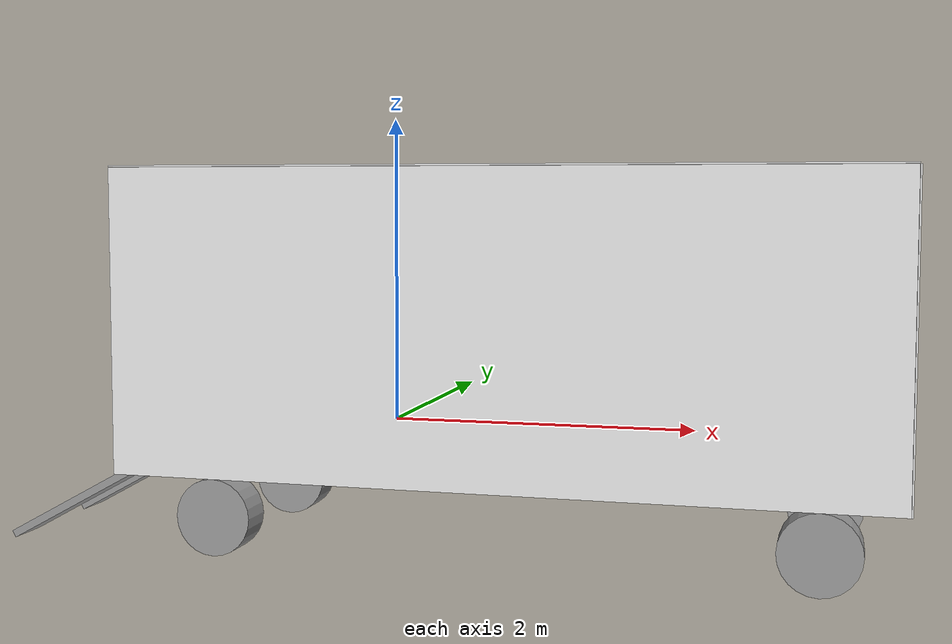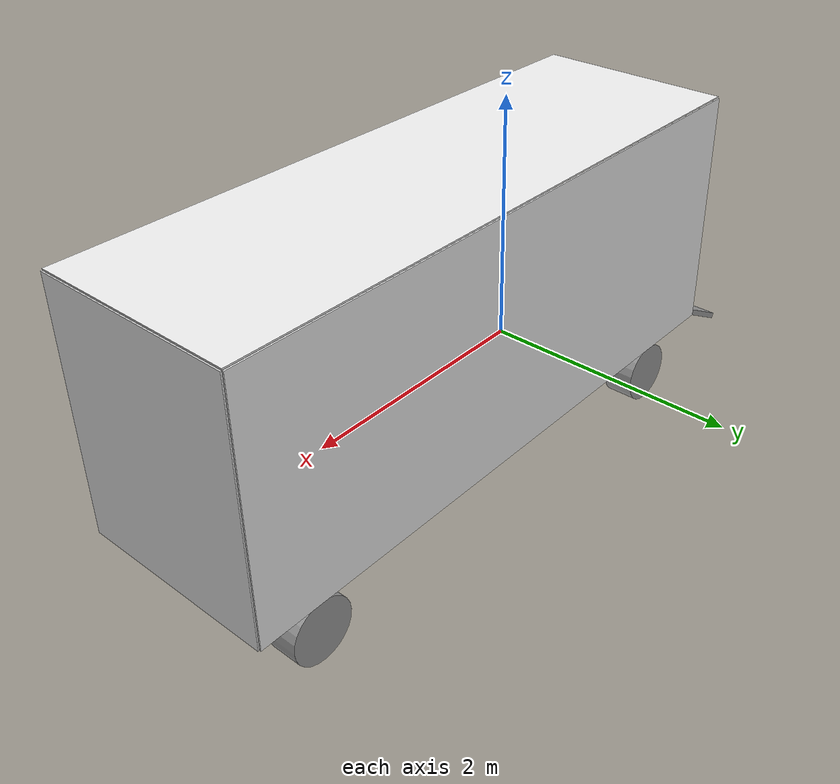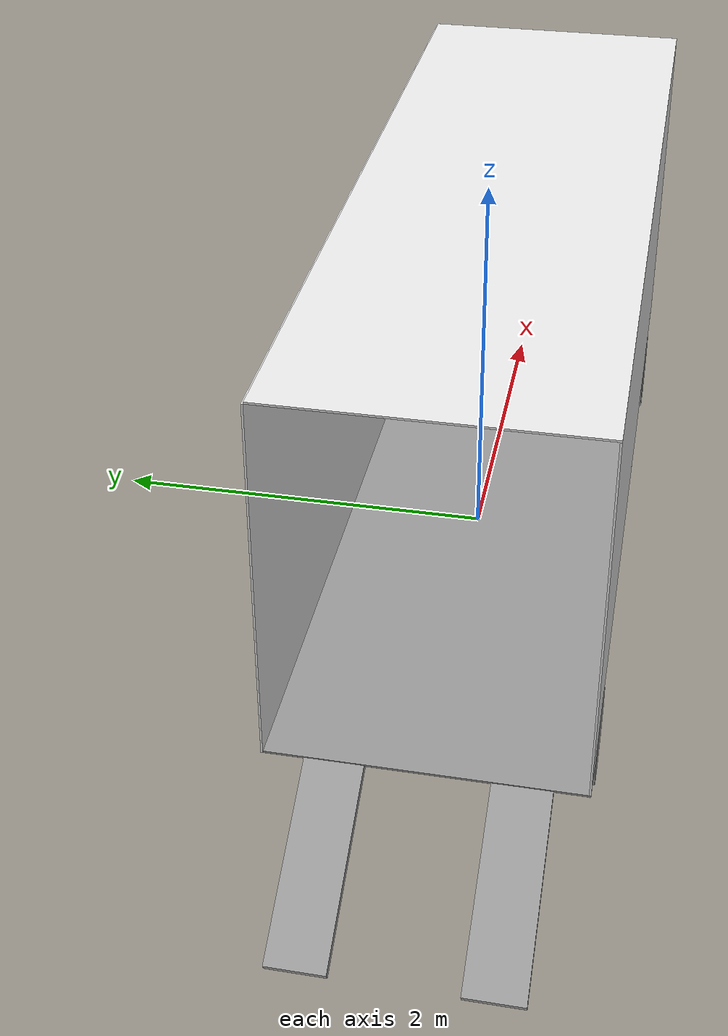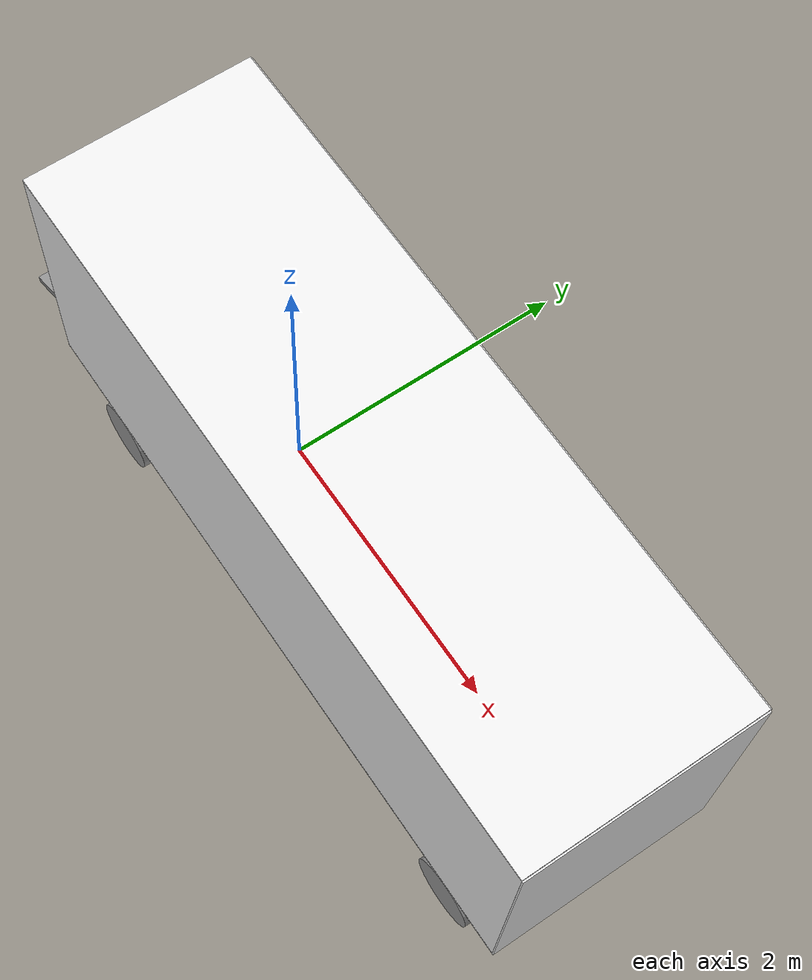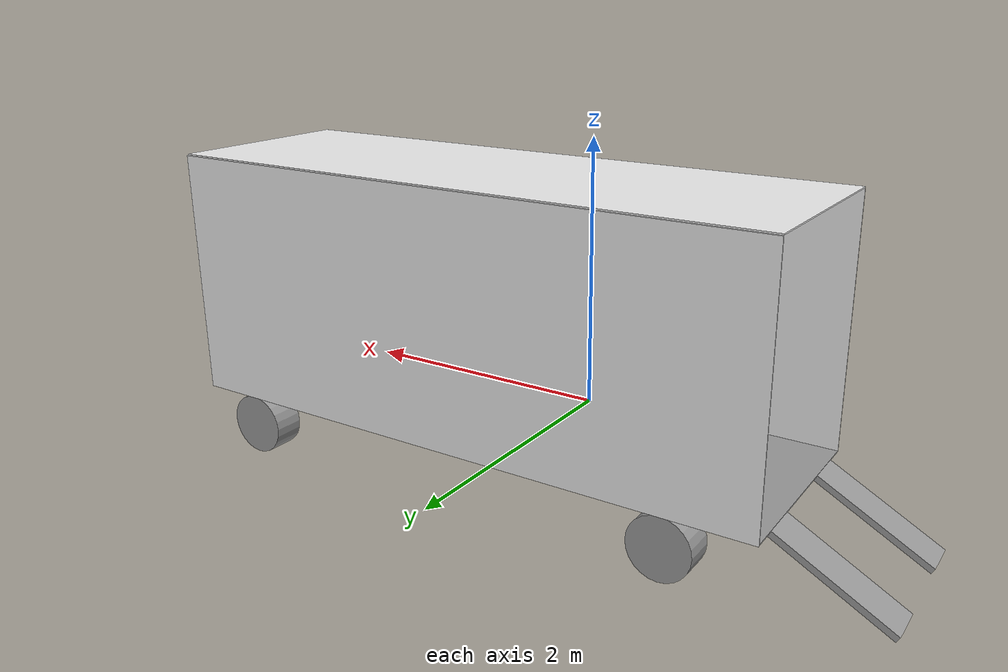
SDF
<?xml version='1.0'?>
<sdf version='1.6'>
  <model name='van'>
    <link name='link_0'>
      <inertial>
        <mass>1</mass>
        <inertia>
          <ixx>0.166667</ixx>
          <ixy>0</ixy>
          <ixz>0</ixz>
          <iyy>0.166667</iyy>
          <iyz>0</iyz>
          <izz>0.166667</izz>
        </inertia>
        <pose frame=''>0 0 0 0 -0 0</pose>
      </inertial>
      <pose frame=''>0.803701 0.00132 -0.310336 0 -0 0</pose>
      <gravity>1</gravity>
      <self_collide>0</self_collide>
      <kinematic>0</kinematic>
      <enable_wind>0</enable_wind>
      <visual name='visual'>
        <pose frame=''>0 0 0 0 -0 0</pose>
        <geometry>
          <box>
            <size>5 1.6 0.01</size>
          </box>
        </geometry>
        <material>
          <lighting>1</lighting>
          <script>
            <uri>file://media/materials/scripts/gazebo.material</uri>
            <name>Gazebo/Grey</name>
          </script>
          <shader type='vertex'>
            <normal_map>__default__</normal_map>
          </shader>
          <ambient>0.3 0.3 0.3 1</ambient>
          <diffuse>0.7 0.7 0.7 1</diffuse>
          <specular>0.01 0.01 0.01 1</specular>
          <emissive>0 0 0 1</emissive>
        </material>
        <transparency>0</transparency>
        <cast_shadows>1</cast_shadows>
      </visual>
      <collision name='collision'>
        <laser_retro>0</laser_retro>
        <max_contacts>10</max_contacts>
        <pose frame=''>0 0 0 0 -0 0</pose>
        <geometry>
          <box>
            <size>5 1.6 0.01</size>
          </box>
        </geometry>
        <surface>
          <friction>
            <ode>
              <mu>1</mu>
              <mu2>1</mu2>
              <fdir1>0 0 0</fdir1>
              <slip1>0</slip1>
              <slip2>0</slip2>
            </ode>
            <torsional>
              <coefficient>1</coefficient>
              <patch_radius>0</patch_radius>
              <surface_radius>0</surface_radius>
              <use_patch_radius>1</use_patch_radius>
              <ode>
                <slip>0</slip>
              </ode>
            </torsional>
          </friction>
          <bounce>
            <restitution_coefficient>0</restitution_coefficient>
            <threshold>1e+06</threshold>
          </bounce>
          <contact>
            <collide_without_contact>0</collide_without_contact>
            <collide_without_contact_bitmask>1</collide_without_contact_bitmask>
            <collide_bitmask>1</collide_bitmask>
            <ode>
              <soft_cfm>0</soft_cfm>
              <soft_erp>0.2</soft_erp>
              <kp>1e+13</kp>
              <kd>1</kd>
              <max_vel>0.01</max_vel>
              <min_depth>0</min_depth>
            </ode>
            <bullet>
              <split_impulse>1</split_impulse>
              <split_impulse_penetration_threshold>-0.01</split_impulse_penetration_threshold>
              <soft_cfm>0</soft_cfm>
              <soft_erp>0.2</soft_erp>
              <kp>1e+13</kp>
              <kd>1</kd>
            </bullet>
          </contact>
        </surface>
      </collision>
    </link>
    <link name='link_0_clone'>
      <inertial>
        <mass>1</mass>
        <inertia>
          <ixx>0.166667</ixx>
          <ixy>0</ixy>
          <ixz>0</ixz>
          <iyy>0.166667</iyy>
          <iyz>0</iyz>
          <izz>0.166667</izz>
        </inertia>
        <pose frame=''>0 0 0 0 -0 0</pose>
      </inertial>
      <pose frame=''>0.803701 0.00132 1.68966 0 -0 0</pose>
      <gravity>1</gravity>
      <self_collide>0</self_collide>
      <kinematic>0</kinematic>
      <enable_wind>0</enable_wind>
      <visual name='visual'>
        <pose frame=''>0 0 0 0 -0 0</pose>
        <geometry>
          <box>
            <size>5 1.6 0.01</size>
          </box>
        </geometry>
        <material>
          <lighting>1</lighting>
          <script>
            <uri>file://media/materials/scripts/gazebo.material</uri>
            <name>Gazebo/White</name>
          </script>
          <shader type='vertex'>
            <normal_map>__default__</normal_map>
          </shader>
          <ambient>0.3 0.3 0.3 1</ambient>
          <diffuse>0.7 0.7 0.7 1</diffuse>
          <specular>0.01 0.01 0.01 1</specular>
          <emissive>0 0 0 1</emissive>
        </material>
        <transparency>0</transparency>
        <cast_shadows>1</cast_shadows>
      </visual>
      <collision name='collision'>
        <laser_retro>0</laser_retro>
        <max_contacts>10</max_contacts>
        <pose frame=''>0 0 0 0 -0 0</pose>
        <geometry>
          <box>
            <size>5 1.6 0.01</size>
          </box>
        </geometry>
        <surface>
          <friction>
            <ode>
              <mu>1</mu>
              <mu2>1</mu2>
              <fdir1>0 0 0</fdir1>
              <slip1>0</slip1>
              <slip2>0</slip2>
            </ode>
            <torsional>
              <coefficient>1</coefficient>
              <patch_radius>0</patch_radius>
              <surface_radius>0</surface_radius>
              <use_patch_radius>1</use_patch_radius>
              <ode>
                <slip>0</slip>
              </ode>
            </torsional>
          </friction>
          <bounce>
            <restitution_coefficient>0</restitution_coefficient>
            <threshold>1e+06</threshold>
          </bounce>
          <contact>
            <collide_without_contact>0</collide_without_contact>
            <collide_without_contact_bitmask>1</collide_without_contact_bitmask>
            <collide_bitmask>1</collide_bitmask>
            <ode>
              <soft_cfm>0</soft_cfm>
              <soft_erp>0.2</soft_erp>
              <kp>1e+13</kp>
              <kd>1</kd>
              <max_vel>0.01</max_vel>
              <min_depth>0</min_depth>
            </ode>
            <bullet>
              <split_impulse>1</split_impulse>
              <split_impulse_penetration_threshold>-0.01</split_impulse_penetration_threshold>
              <soft_cfm>0</soft_cfm>
              <soft_erp>0.2</soft_erp>
              <kp>1e+13</kp>
              <kd>1</kd>
            </bullet>
          </contact>
        </surface>
      </collision>
    </link>
    <link name='link_1'>
      <inertial>
        <mass>1</mass>
        <inertia>
          <ixx>0.166667</ixx>
          <ixy>0</ixy>
          <ixz>0</ixz>
          <iyy>0.166667</iyy>
          <iyz>0</iyz>
          <izz>0.166667</izz>
        </inertia>
        <pose frame=''>0 0 0 0 -0 0</pose>
      </inertial>
      <pose frame=''>0.803701 0.80832 0.682664 0 -0 0</pose>
      <gravity>1</gravity>
      <self_collide>0</self_collide>
      <kinematic>0</kinematic>
      <enable_wind>0</enable_wind>
      <visual name='visual'>
        <pose frame=''>0 0 0 0 -0 0</pose>
        <geometry>
          <box>
            <size>5 0.01 2</size>
          </box>
        </geometry>
        <material>
          <lighting>1</lighting>
          <script>
            <uri>file://media/materials/scripts/gazebo.material</uri>
            <name>Gazebo/White</name>
          </script>
          <shader type='vertex'>
            <normal_map>__default__</normal_map>
          </shader>
          <ambient>0.3 0.3 0.3 1</ambient>
          <diffuse>0.7 0.7 0.7 1</diffuse>
          <specular>0.01 0.01 0.01 1</specular>
          <emissive>0 0 0 1</emissive>
        </material>
        <transparency>0</transparency>
        <cast_shadows>1</cast_shadows>
      </visual>
      <collision name='collision'>
        <laser_retro>0</laser_retro>
        <max_contacts>10</max_contacts>
        <pose frame=''>0 0 0 0 -0 0</pose>
        <geometry>
          <box>
            <size>5 0.01 2</size>
          </box>
        </geometry>
        <surface>
          <friction>
            <ode>
              <mu>1</mu>
              <mu2>1</mu2>
              <fdir1>0 0 0</fdir1>
              <slip1>0</slip1>
              <slip2>0</slip2>
            </ode>
            <torsional>
              <coefficient>1</coefficient>
              <patch_radius>0</patch_radius>
              <surface_radius>0</surface_radius>
              <use_patch_radius>1</use_patch_radius>
              <ode>
                <slip>0</slip>
              </ode>
            </torsional>
          </friction>
          <bounce>
            <restitution_coefficient>0</restitution_coefficient>
            <threshold>1e+06</threshold>
          </bounce>
          <contact>
            <collide_without_contact>0</collide_without_contact>
            <collide_without_contact_bitmask>1</collide_without_contact_bitmask>
            <collide_bitmask>1</collide_bitmask>
            <ode>
              <soft_cfm>0</soft_cfm>
              <soft_erp>0.2</soft_erp>
              <kp>1e+13</kp>
              <kd>1</kd>
              <max_vel>0.01</max_vel>
              <min_depth>0</min_depth>
            </ode>
            <bullet>
              <split_impulse>1</split_impulse>
              <split_impulse_penetration_threshold>-0.01</split_impulse_penetration_threshold>
              <soft_cfm>0</soft_cfm>
              <soft_erp>0.2</soft_erp>
              <kp>1e+13</kp>
              <kd>1</kd>
            </bullet>
          </contact>
        </surface>
      </collision>
    </link>
    <link name='link_1_clone'>
      <inertial>
        <mass>1</mass>
        <inertia>
          <ixx>0.166667</ixx>
          <ixy>0</ixy>
          <ixz>0</ixz>
          <iyy>0.166667</iyy>
          <iyz>0</iyz>
          <izz>0.166667</izz>
        </inertia>
        <pose frame=''>0 0 0 0 -0 0</pose>
      </inertial>
      <pose frame=''>0.803701 -0.79368 0.682664 0 -0 0</pose>
      <gravity>1</gravity>
      <self_collide>0</self_collide>
      <kinematic>0</kinematic>
      <enable_wind>0</enable_wind>
      <visual name='visual'>
        <pose frame=''>0 0 0 0 -0 0</pose>
        <geometry>
          <box>
            <size>5 0.01 2</size>
          </box>
        </geometry>
        <material>
          <lighting>1</lighting>
          <script>
            <uri>file://media/materials/scripts/gazebo.material</uri>
            <name>Gazebo/White</name>
          </script>
          <shader type='vertex'>
            <normal_map>__default__</normal_map>
          </shader>
          <ambient>0.3 0.3 0.3 1</ambient>
          <diffuse>0.7 0.7 0.7 1</diffuse>
          <specular>0.01 0.01 0.01 1</specular>
          <emissive>0 0 0 1</emissive>
        </material>
        <transparency>0</transparency>
        <cast_shadows>1</cast_shadows>
      </visual>
      <collision name='collision'>
        <laser_retro>0</laser_retro>
        <max_contacts>10</max_contacts>
        <pose frame=''>0 0 0 0 -0 0</pose>
        <geometry>
          <box>
            <size>5 0.01 2</size>
          </box>
        </geometry>
        <surface>
          <friction>
            <ode>
              <mu>1</mu>
              <mu2>1</mu2>
              <fdir1>0 0 0</fdir1>
              <slip1>0</slip1>
              <slip2>0</slip2>
            </ode>
            <torsional>
              <coefficient>1</coefficient>
              <patch_radius>0</patch_radius>
              <surface_radius>0</surface_radius>
              <use_patch_radius>1</use_patch_radius>
              <ode>
                <slip>0</slip>
              </ode>
            </torsional>
          </friction>
          <bounce>
            <restitution_coefficient>0</restitution_coefficient>
            <threshold>1e+06</threshold>
          </bounce>
          <contact>
            <collide_without_contact>0</collide_without_contact>
            <collide_without_contact_bitmask>1</collide_without_contact_bitmask>
            <collide_bitmask>1</collide_bitmask>
            <ode>
              <soft_cfm>0</soft_cfm>
              <soft_erp>0.2</soft_erp>
              <kp>1e+13</kp>
              <kd>1</kd>
              <max_vel>0.01</max_vel>
              <min_depth>0</min_depth>
            </ode>
            <bullet>
              <split_impulse>1</split_impulse>
              <split_impulse_penetration_threshold>-0.01</split_impulse_penetration_threshold>
              <soft_cfm>0</soft_cfm>
              <soft_erp>0.2</soft_erp>
              <kp>1e+13</kp>
              <kd>1</kd>
            </bullet>
          </contact>
        </surface>
      </collision>
    </link>
    <link name='link_2'>
      <inertial>
        <mass>1</mass>
        <inertia>
          <ixx>0.166667</ixx>
          <ixy>0</ixy>
          <ixz>0</ixz>
          <iyy>0.166667</iyy>
          <iyz>0</iyz>
          <izz>0.166667</izz>
        </inertia>
        <pose frame=''>0 0 0 0 -0 0</pose>
      </inertial>
      <pose frame=''>3.3107 0.00132 0.682664 0 -0 0</pose>
      <gravity>1</gravity>
      <self_collide>0</self_collide>
      <kinematic>0</kinematic>
      <enable_wind>0</enable_wind>
      <visual name='visual'>
        <pose frame=''>0 0 0 0 -0 0</pose>
        <geometry>
          <box>
            <size>0.01 1.6 2</size>
          </box>
        </geometry>
        <material>
          <lighting>1</lighting>
          <script>
            <uri>file://media/materials/scripts/gazebo.material</uri>
            <name>Gazebo/White</name>
          </script>
          <shader type='vertex'>
            <normal_map>__default__</normal_map>
          </shader>
          <ambient>0.3 0.3 0.3 1</ambient>
          <diffuse>0.7 0.7 0.7 1</diffuse>
          <specular>0.01 0.01 0.01 1</specular>
          <emissive>0 0 0 1</emissive>
        </material>
        <transparency>0</transparency>
        <cast_shadows>1</cast_shadows>
      </visual>
      <collision name='collision'>
        <laser_retro>0</laser_retro>
        <max_contacts>10</max_contacts>
        <pose frame=''>0 0 0 0 -0 0</pose>
        <geometry>
          <box>
            <size>0.01 1.6 2</size>
          </box>
        </geometry>
        <surface>
          <friction>
            <ode>
              <mu>1</mu>
              <mu2>1</mu2>
              <fdir1>0 0 0</fdir1>
              <slip1>0</slip1>
              <slip2>0</slip2>
            </ode>
            <torsional>
              <coefficient>1</coefficient>
              <patch_radius>0</patch_radius>
              <surface_radius>0</surface_radius>
              <use_patch_radius>1</use_patch_radius>
              <ode>
                <slip>0</slip>
              </ode>
            </torsional>
          </friction>
          <bounce>
            <restitution_coefficient>0</restitution_coefficient>
            <threshold>1e+06</threshold>
          </bounce>
          <contact>
            <collide_without_contact>0</collide_without_contact>
            <collide_without_contact_bitmask>1</collide_without_contact_bitmask>
            <collide_bitmask>1</collide_bitmask>
            <ode>
              <soft_cfm>0</soft_cfm>
              <soft_erp>0.2</soft_erp>
              <kp>1e+13</kp>
              <kd>1</kd>
              <max_vel>0.01</max_vel>
              <min_depth>0</min_depth>
            </ode>
            <bullet>
              <split_impulse>1</split_impulse>
              <split_impulse_penetration_threshold>-0.01</split_impulse_penetration_threshold>
              <soft_cfm>0</soft_cfm>
              <soft_erp>0.2</soft_erp>
              <kp>1e+13</kp>
              <kd>1</kd>
            </bullet>
          </contact>
        </surface>
      </collision>
    </link>
    <link name='link_3'>
      <inertial>
        <mass>1</mass>
        <inertia>
          <ixx>0.166667</ixx>
          <ixy>0</ixy>
          <ixz>0</ixz>
          <iyy>0.166667</iyy>
          <iyz>0</iyz>
          <izz>0.166667</izz>
        </inertia>
        <pose frame=''>0 0 0 0 -0 0</pose>
      </inertial>
      <pose frame=''>-2.11708 -0.471121 -0.568988 0 -0 0</pose>
      <gravity>1</gravity>
      <self_collide>0</self_collide>
      <kinematic>0</kinematic>
      <enable_wind>0</enable_wind>
      <visual name='visual'>
        <pose frame=''>0 0 0 0 -0.5 0</pose>
        <geometry>
          <box>
            <size>1 0.3 0.05</size>
          </box>
        </geometry>
        <material>
          <lighting>1</lighting>
          <script>
            <uri>file://media/materials/scripts/gazebo.material</uri>
            <name>Gazebo/Grey</name>
          </script>
          <shader type='vertex'>
            <normal_map>__default__</normal_map>
          </shader>
          <ambient>0.3 0.3 0.3 1</ambient>
          <diffuse>0.7 0.7 0.7 1</diffuse>
          <specular>0.01 0.01 0.01 1</specular>
          <emissive>0 0 0 1</emissive>
        </material>
        <transparency>0</transparency>
        <cast_shadows>1</cast_shadows>
      </visual>
      <collision name='collision'>
        <laser_retro>0</laser_retro>
        <max_contacts>10</max_contacts>
        <pose frame=''>0 0 0 0 -0.5 0</pose>
        <geometry>
          <box>
            <size>1 0.3 0.05</size>
          </box>
        </geometry>
        <surface>
          <friction>
            <ode>
              <mu>1</mu>
              <mu2>1</mu2>
              <fdir1>0 0 0</fdir1>
              <slip1>0</slip1>
              <slip2>0</slip2>
            </ode>
            <torsional>
              <coefficient>1</coefficient>
              <patch_radius>0</patch_radius>
              <surface_radius>0</surface_radius>
              <use_patch_radius>1</use_patch_radius>
              <ode>
                <slip>0</slip>
              </ode>
            </torsional>
          </friction>
          <bounce>
            <restitution_coefficient>0</restitution_coefficient>
            <threshold>1e+06</threshold>
          </bounce>
          <contact>
            <collide_without_contact>0</collide_without_contact>
            <collide_without_contact_bitmask>1</collide_without_contact_bitmask>
            <collide_bitmask>1</collide_bitmask>
            <ode>
              <soft_cfm>0</soft_cfm>
              <soft_erp>0.2</soft_erp>
              <kp>1e+13</kp>
              <kd>1</kd>
              <max_vel>0.01</max_vel>
              <min_depth>0</min_depth>
            </ode>
            <bullet>
              <split_impulse>1</split_impulse>
              <split_impulse_penetration_threshold>-0.01</split_impulse_penetration_threshold>
              <soft_cfm>0</soft_cfm>
              <soft_erp>0.2</soft_erp>
              <kp>1e+13</kp>
              <kd>1</kd>
            </bullet>
          </contact>
        </surface>
      </collision>
    </link>
    <link name='link_3_clone'>
      <inertial>
        <mass>1</mass>
        <inertia>
          <ixx>0.166667</ixx>
          <ixy>0</ixy>
          <ixz>0</ixz>
          <iyy>0.166667</iyy>
          <iyz>0</iyz>
          <izz>0.166667</izz>
        </inertia>
        <pose frame=''>0 0 0 0 -0 0</pose>
      </inertial>
      <pose frame=''>-2.11708 0.447243 -0.568988 0 -0 0</pose>
      <gravity>1</gravity>
      <self_collide>0</self_collide>
      <kinematic>0</kinematic>
      <enable_wind>0</enable_wind>
      <visual name='visual'>
        <pose frame=''>0 0 0 0 -0.5 0</pose>
        <geometry>
          <box>
            <size>1 0.3 0.05</size>
          </box>
        </geometry>
        <material>
          <lighting>1</lighting>
          <script>
            <uri>file://media/materials/scripts/gazebo.material</uri>
            <name>Gazebo/Grey</name>
          </script>
          <shader type='vertex'>
            <normal_map>__default__</normal_map>
          </shader>
          <ambient>0.3 0.3 0.3 1</ambient>
          <diffuse>0.7 0.7 0.7 1</diffuse>
          <specular>0.01 0.01 0.01 1</specular>
          <emissive>0 0 0 1</emissive>
        </material>
        <transparency>0</transparency>
        <cast_shadows>1</cast_shadows>
      </visual>
      <collision name='collision'>
        <laser_retro>0</laser_retro>
        <max_contacts>10</max_contacts>
        <pose frame=''>0 0 0 0 -0.5 0</pose>
        <geometry>
          <box>
            <size>1 0.3 0.05</size>
          </box>
        </geometry>
        <surface>
          <friction>
            <ode>
              <mu>1</mu>
              <mu2>1</mu2>
              <fdir1>0 0 0</fdir1>
              <slip1>0</slip1>
              <slip2>0</slip2>
            </ode>
            <torsional>
              <coefficient>1</coefficient>
              <patch_radius>0</patch_radius>
              <surface_radius>0</surface_radius>
              <use_patch_radius>1</use_patch_radius>
              <ode>
                <slip>0</slip>
              </ode>
            </torsional>
          </friction>
          <bounce>
            <restitution_coefficient>0</restitution_coefficient>
            <threshold>1e+06</threshold>
          </bounce>
          <contact>
            <collide_without_contact>0</collide_without_contact>
            <collide_without_contact_bitmask>1</collide_without_contact_bitmask>
            <collide_bitmask>1</collide_bitmask>
            <ode>
              <soft_cfm>0</soft_cfm>
              <soft_erp>0.2</soft_erp>
              <kp>1e+13</kp>
              <kd>1</kd>
              <max_vel>0.01</max_vel>
              <min_depth>0</min_depth>
            </ode>
            <bullet>
              <split_impulse>1</split_impulse>
              <split_impulse_penetration_threshold>-0.01</split_impulse_penetration_threshold>
              <soft_cfm>0</soft_cfm>
              <soft_erp>0.2</soft_erp>
              <kp>1e+13</kp>
              <kd>1</kd>
            </bullet>
          </contact>
        </surface>
      </collision>
    </link>
    <link name='link_4'>
      <inertial>
        <mass>1</mass>
        <inertia>
          <ixx>0.145833</ixx>
          <ixy>0</ixy>
          <ixz>0</ixz>
          <iyy>0.145833</iyy>
          <iyz>0</iyz>
          <izz>0.125</izz>
        </inertia>
        <pose frame=''>0 0 0 0 -0 0</pose>
      </inertial>
      <pose frame=''>-0.996299 0.676319 -0.567336 1.5708 -0 0</pose>
      <gravity>1</gravity>
      <self_collide>0</self_collide>
      <kinematic>0</kinematic>
      <enable_wind>0</enable_wind>
      <visual name='visual'>
        <pose frame=''>0 0 0 0 -0 0</pose>
        <geometry>
          <cylinder>
            <radius>0.25</radius>
            <length>0.25</length>
          </cylinder>
        </geometry>
        <material>
          <lighting>1</lighting>
          <script>
            <uri>file://media/materials/scripts/gazebo.material</uri>
            <name>Gazebo/Grey</name>
          </script>
          <shader type='vertex'>
            <normal_map>__default__</normal_map>
          </shader>
          <ambient>0.3 0.3 0.3 1</ambient>
          <diffuse>0.7 0.7 0.7 1</diffuse>
          <specular>0.01 0.01 0.01 1</specular>
          <emissive>0 0 0 1</emissive>
        </material>
        <transparency>0</transparency>
        <cast_shadows>1</cast_shadows>
      </visual>
      <collision name='collision'>
        <laser_retro>0</laser_retro>
        <max_contacts>10</max_contacts>
        <pose frame=''>0 0 0 0 -0 0</pose>
        <geometry>
          <cylinder>
            <radius>0.25</radius>
            <length>0.25</length>
          </cylinder>
        </geometry>
        <surface>
          <friction>
            <ode>
              <mu>1</mu>
              <mu2>1</mu2>
              <fdir1>0 0 0</fdir1>
              <slip1>0</slip1>
              <slip2>0</slip2>
            </ode>
            <torsional>
              <coefficient>1</coefficient>
              <patch_radius>0</patch_radius>
              <surface_radius>0</surface_radius>
              <use_patch_radius>1</use_patch_radius>
              <ode>
                <slip>0</slip>
              </ode>
            </torsional>
          </friction>
          <bounce>
            <restitution_coefficient>0</restitution_coefficient>
            <threshold>1e+06</threshold>
          </bounce>
          <contact>
            <collide_without_contact>0</collide_without_contact>
            <collide_without_contact_bitmask>1</collide_without_contact_bitmask>
            <collide_bitmask>1</collide_bitmask>
            <ode>
              <soft_cfm>0</soft_cfm>
              <soft_erp>0.2</soft_erp>
              <kp>1e+13</kp>
              <kd>1</kd>
              <max_vel>0.01</max_vel>
              <min_depth>0</min_depth>
            </ode>
            <bullet>
              <split_impulse>1</split_impulse>
              <split_impulse_penetration_threshold>-0.01</split_impulse_penetration_threshold>
              <soft_cfm>0</soft_cfm>
              <soft_erp>0.2</soft_erp>
              <kp>1e+13</kp>
              <kd>1</kd>
            </bullet>
          </contact>
        </surface>
      </collision>
    </link>
    <link name='link_4_clone'>
      <inertial>
        <mass>1</mass>
        <inertia>
          <ixx>0.145833</ixx>
          <ixy>0</ixy>
          <ixz>0</ixz>
          <iyy>0.145833</iyy>
          <iyz>0</iyz>
          <izz>0.125</izz>
        </inertia>
        <pose frame=''>0 0 0 0 -0 0</pose>
      </inertial>
      <pose frame=''>2.8037 0.676319 -0.567336 1.5708 -0 0</pose>
      <gravity>1</gravity>
      <self_collide>0</self_collide>
      <kinematic>0</kinematic>
      <enable_wind>0</enable_wind>
      <visual name='visual'>
        <pose frame=''>0 0 0 0 -0 0</pose>
        <geometry>
          <cylinder>
            <radius>0.25</radius>
            <length>0.25</length>
          </cylinder>
        </geometry>
        <material>
          <lighting>1</lighting>
          <script>
            <uri>file://media/materials/scripts/gazebo.material</uri>
            <name>Gazebo/Grey</name>
          </script>
          <shader type='vertex'>
            <normal_map>__default__</normal_map>
          </shader>
          <ambient>0.3 0.3 0.3 1</ambient>
          <diffuse>0.7 0.7 0.7 1</diffuse>
          <specular>0.01 0.01 0.01 1</specular>
          <emissive>0 0 0 1</emissive>
        </material>
        <transparency>0</transparency>
        <cast_shadows>1</cast_shadows>
      </visual>
      <collision name='collision'>
        <laser_retro>0</laser_retro>
        <max_contacts>10</max_contacts>
        <pose frame=''>0 0 0 0 -0 0</pose>
        <geometry>
          <cylinder>
            <radius>0.25</radius>
            <length>0.25</length>
          </cylinder>
        </geometry>
        <surface>
          <friction>
            <ode>
              <mu>1</mu>
              <mu2>1</mu2>
              <fdir1>0 0 0</fdir1>
              <slip1>0</slip1>
              <slip2>0</slip2>
            </ode>
            <torsional>
              <coefficient>1</coefficient>
              <patch_radius>0</patch_radius>
              <surface_radius>0</surface_radius>
              <use_patch_radius>1</use_patch_radius>
              <ode>
                <slip>0</slip>
              </ode>
            </torsional>
          </friction>
          <bounce>
            <restitution_coefficient>0</restitution_coefficient>
            <threshold>1e+06</threshold>
          </bounce>
          <contact>
            <collide_without_contact>0</collide_without_contact>
            <collide_without_contact_bitmask>1</collide_without_contact_bitmask>
            <collide_bitmask>1</collide_bitmask>
            <ode>
              <soft_cfm>0</soft_cfm>
              <soft_erp>0.2</soft_erp>
              <kp>1e+13</kp>
              <kd>1</kd>
              <max_vel>0.01</max_vel>
              <min_depth>0</min_depth>
            </ode>
            <bullet>
              <split_impulse>1</split_impulse>
              <split_impulse_penetration_threshold>-0.01</split_impulse_penetration_threshold>
              <soft_cfm>0</soft_cfm>
              <soft_erp>0.2</soft_erp>
              <kp>1e+13</kp>
              <kd>1</kd>
            </bullet>
          </contact>
        </surface>
      </collision>
    </link>
    <link name='link_4_clone_0'>
      <inertial>
        <mass>1</mass>
        <inertia>
          <ixx>0.145833</ixx>
          <ixy>0</ixy>
          <ixz>0</ixz>
          <iyy>0.145833</iyy>
          <iyz>0</iyz>
          <izz>0.125</izz>
        </inertia>
        <pose frame=''>0 0 0 0 -0 0</pose>
      </inertial>
      <pose frame=''>-0.996299 -0.673679 -0.567336 1.5708 -0 0</pose>
      <gravity>1</gravity>
      <self_collide>0</self_collide>
      <kinematic>0</kinematic>
      <enable_wind>0</enable_wind>
      <visual name='visual'>
        <pose frame=''>0 0 0 0 -0 0</pose>
        <geometry>
          <cylinder>
            <radius>0.25</radius>
            <length>0.25</length>
          </cylinder>
        </geometry>
        <material>
          <lighting>1</lighting>
          <script>
            <uri>file://media/materials/scripts/gazebo.material</uri>
            <name>Gazebo/Grey</name>
          </script>
          <shader type='vertex'>
            <normal_map>__default__</normal_map>
          </shader>
          <ambient>0.3 0.3 0.3 1</ambient>
          <diffuse>0.7 0.7 0.7 1</diffuse>
          <specular>0.01 0.01 0.01 1</specular>
          <emissive>0 0 0 1</emissive>
        </material>
        <transparency>0</transparency>
        <cast_shadows>1</cast_shadows>
      </visual>
      <collision name='collision'>
        <laser_retro>0</laser_retro>
        <max_contacts>10</max_contacts>
        <pose frame=''>0 0 0 0 -0 0</pose>
        <geometry>
          <cylinder>
            <radius>0.25</radius>
            <length>0.25</length>
          </cylinder>
        </geometry>
        <surface>
          <friction>
            <ode>
              <mu>1</mu>
              <mu2>1</mu2>
              <fdir1>0 0 0</fdir1>
              <slip1>0</slip1>
              <slip2>0</slip2>
            </ode>
            <torsional>
              <coefficient>1</coefficient>
              <patch_radius>0</patch_radius>
              <surface_radius>0</surface_radius>
              <use_patch_radius>1</use_patch_radius>
              <ode>
                <slip>0</slip>
              </ode>
            </torsional>
          </friction>
          <bounce>
            <restitution_coefficient>0</restitution_coefficient>
            <threshold>1e+06</threshold>
          </bounce>
          <contact>
            <collide_without_contact>0</collide_without_contact>
            <collide_without_contact_bitmask>1</collide_without_contact_bitmask>
            <collide_bitmask>1</collide_bitmask>
            <ode>
              <soft_cfm>0</soft_cfm>
              <soft_erp>0.2</soft_erp>
              <kp>1e+13</kp>
              <kd>1</kd>
              <max_vel>0.01</max_vel>
              <min_depth>0</min_depth>
            </ode>
            <bullet>
              <split_impulse>1</split_impulse>
              <split_impulse_penetration_threshold>-0.01</split_impulse_penetration_threshold>
              <soft_cfm>0</soft_cfm>
              <soft_erp>0.2</soft_erp>
              <kp>1e+13</kp>
              <kd>1</kd>
            </bullet>
          </contact>
        </surface>
      </collision>
    </link>
    <link name='link_4_clone_1'>
      <inertial>
        <mass>1</mass>
        <inertia>
          <ixx>0.145833</ixx>
          <ixy>0</ixy>
          <ixz>0</ixz>
          <iyy>0.145833</iyy>
          <iyz>0</iyz>
          <izz>0.125</izz>
        </inertia>
        <pose frame=''>0 0 0 0 -0 0</pose>
      </inertial>
      <pose frame=''>2.8037 -0.673679 -0.567336 1.5708 -0 0</pose>
      <gravity>1</gravity>
      <self_collide>0</self_collide>
      <kinematic>0</kinematic>
      <enable_wind>0</enable_wind>
      <visual name='visual'>
        <pose frame=''>0 0 0 0 -0 0</pose>
        <geometry>
          <cylinder>
            <radius>0.25</radius>
            <length>0.25</length>
          </cylinder>
        </geometry>
        <material>
          <lighting>1</lighting>
          <script>
            <uri>file://media/materials/scripts/gazebo.material</uri>
            <name>Gazebo/Grey</name>
          </script>
          <shader type='vertex'>
            <normal_map>__default__</normal_map>
          </shader>
          <ambient>0.3 0.3 0.3 1</ambient>
          <diffuse>0.7 0.7 0.7 1</diffuse>
          <specular>0.01 0.01 0.01 1</specular>
          <emissive>0 0 0 1</emissive>
        </material>
        <transparency>0</transparency>
        <cast_shadows>1</cast_shadows>
      </visual>
      <collision name='collision'>
        <laser_retro>0</laser_retro>
        <max_contacts>10</max_contacts>
        <pose frame=''>0 0 0 0 -0 0</pose>
        <geometry>
          <cylinder>
            <radius>0.25</radius>
            <length>0.25</length>
          </cylinder>
        </geometry>
        <surface>
          <friction>
            <ode>
              <mu>1</mu>
              <mu2>1</mu2>
              <fdir1>0 0 0</fdir1>
              <slip1>0</slip1>
              <slip2>0</slip2>
            </ode>
            <torsional>
              <coefficient>1</coefficient>
              <patch_radius>0</patch_radius>
              <surface_radius>0</surface_radius>
              <use_patch_radius>1</use_patch_radius>
              <ode>
                <slip>0</slip>
              </ode>
            </torsional>
          </friction>
          <bounce>
            <restitution_coefficient>0</restitution_coefficient>
            <threshold>1e+06</threshold>
          </bounce>
          <contact>
            <collide_without_contact>0</collide_without_contact>
            <collide_without_contact_bitmask>1</collide_without_contact_bitmask>
            <collide_bitmask>1</collide_bitmask>
            <ode>
              <soft_cfm>0</soft_cfm>
              <soft_erp>0.2</soft_erp>
              <kp>1e+13</kp>
              <kd>1</kd>
              <max_vel>0.01</max_vel>
              <min_depth>0</min_depth>
            </ode>
            <bullet>
              <split_impulse>1</split_impulse>
              <split_impulse_penetration_threshold>-0.01</split_impulse_penetration_threshold>
              <soft_cfm>0</soft_cfm>
              <soft_erp>0.2</soft_erp>
              <kp>1e+13</kp>
              <kd>1</kd>
            </bullet>
          </contact>
        </surface>
      </collision>
    </link>
    <joint name='link_0_JOINT_0' type='fixed'>
      <parent>link_0</parent>
      <child>link_1</child>
      <pose frame=''>0 0 0 0 -0 0</pose>
      <physics>
        <ode>
          <limit>
            <cfm>0</cfm>
            <erp>0.2</erp>
          </limit>
          <suspension>
            <cfm>0</cfm>
            <erp>0.2</erp>
          </suspension>
        </ode>
      </physics>
    </joint>
    <joint name='link_0_JOINT_10' type='fixed'>
      <parent>link_0</parent>
      <child>link_4_clone_1</child>
      <pose frame=''>0 0 0 0 -0 0</pose>
      <physics>
        <ode>
          <limit>
            <cfm>0</cfm>
            <erp>0.2</erp>
          </limit>
          <suspension>
            <cfm>0</cfm>
            <erp>0.2</erp>
          </suspension>
        </ode>
      </physics>
    </joint>
    <joint name='link_0_JOINT_1' type='fixed'>
      <parent>link_0</parent>
      <child>link_1_clone</child>
      <pose frame=''>0 0 0 0 -0 0</pose>
      <physics>
        <ode>
          <limit>
            <cfm>0</cfm>
            <erp>0.2</erp>
          </limit>
          <suspension>
            <cfm>0</cfm>
            <erp>0.2</erp>
          </suspension>
        </ode>
      </physics>
    </joint>
    <joint name='link_0_JOINT_2' type='fixed'>
      <parent>link_0</parent>
      <child>link_2</child>
      <pose frame=''>0 0 0 0 -0 0</pose>
      <physics>
        <ode>
          <limit>
            <cfm>0</cfm>
            <erp>0.2</erp>
          </limit>
          <suspension>
            <cfm>0</cfm>
            <erp>0.2</erp>
          </suspension>
        </ode>
      </physics>
    </joint>
    <joint name='link_0_JOINT_3' type='fixed'>
      <parent>link_0</parent>
      <child>link_0_clone</child>
      <pose frame=''>0 0 0 0 -0 0</pose>
      <physics>
        <ode>
          <limit>
            <cfm>0</cfm>
            <erp>0.2</erp>
          </limit>
          <suspension>
            <cfm>0</cfm>
            <erp>0.2</erp>
          </suspension>
        </ode>
      </physics>
    </joint>
    <joint name='link_0_JOINT_5' type='fixed'>
      <parent>link_0</parent>
      <child>link_3_clone</child>
      <pose frame=''>0 0 0 0 -0 0</pose>
      <physics>
        <ode>
          <limit>
            <cfm>0</cfm>
            <erp>0.2</erp>
          </limit>
          <suspension>
            <cfm>0</cfm>
            <erp>0.2</erp>
          </suspension>
        </ode>
      </physics>
    </joint>
    <joint name='link_0_JOINT_6' type='fixed'>
      <parent>link_0</parent>
      <child>link_3</child>
      <pose frame=''>0 0 0 0 -0 0</pose>
      <physics>
        <ode>
          <limit>
            <cfm>0</cfm>
            <erp>0.2</erp>
          </limit>
          <suspension>
            <cfm>0</cfm>
            <erp>0.2</erp>
          </suspension>
        </ode>
      </physics>
    </joint>
    <joint name='link_0_JOINT_7' type='fixed'>
      <parent>link_0</parent>
      <child>link_4</child>
      <pose frame=''>0 0 0 0 -0 0</pose>
      <physics>
        <ode>
          <limit>
            <cfm>0</cfm>
            <erp>0.2</erp>
          </limit>
          <suspension>
            <cfm>0</cfm>
            <erp>0.2</erp>
          </suspension>
        </ode>
      </physics>
    </joint>
    <joint name='link_0_JOINT_8' type='fixed'>
      <parent>link_0</parent>
      <child>link_4_clone_0</child>
      <pose frame=''>0 0 0 0 -0 0</pose>
      <physics>
        <ode>
          <limit>
            <cfm>0</cfm>
            <erp>0.2</erp>
          </limit>
          <suspension>
            <cfm>0</cfm>
            <erp>0.2</erp>
          </suspension>
        </ode>
      </physics>
    </joint>
    <joint name='link_0_JOINT_9' type='fixed'>
      <parent>link_0</parent>
      <child>link_4_clone</child>
      <pose frame=''>0 0 0 0 -0 0</pose>
      <physics>
        <ode>
          <limit>
            <cfm>0</cfm>
            <erp>0.2</erp>
          </limit>
          <suspension>
            <cfm>0</cfm>
            <erp>0.2</erp>
          </suspension>
        </ode>
      </physics>
    </joint>
    <static>0</static>
    <allow_auto_disable>1</allow_auto_disable>
  </model>
</sdf>
